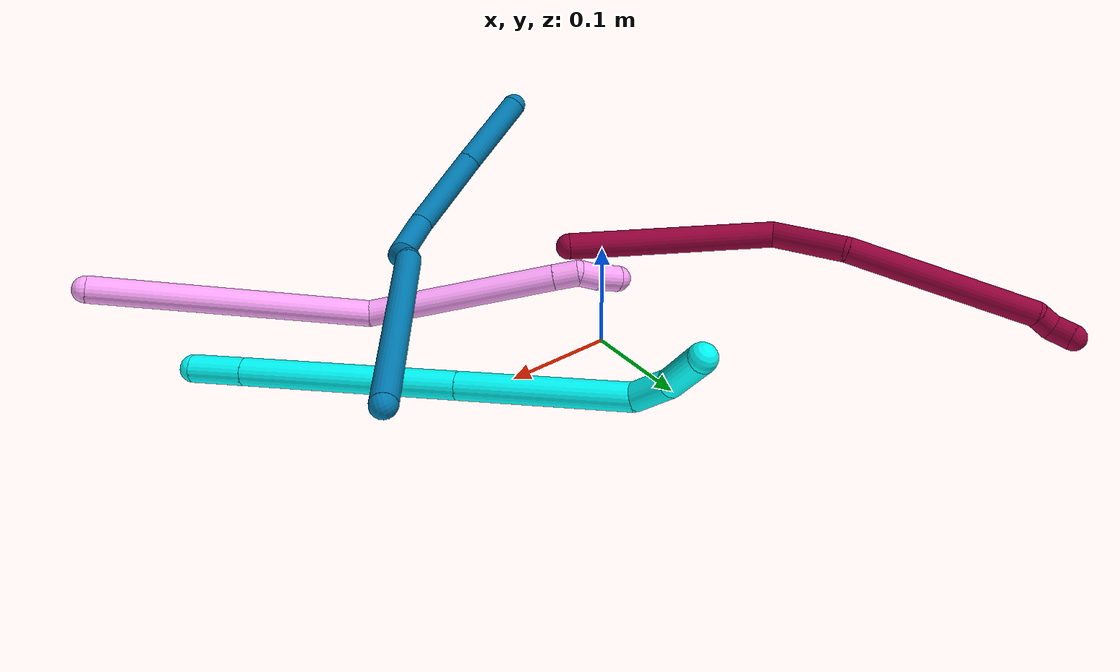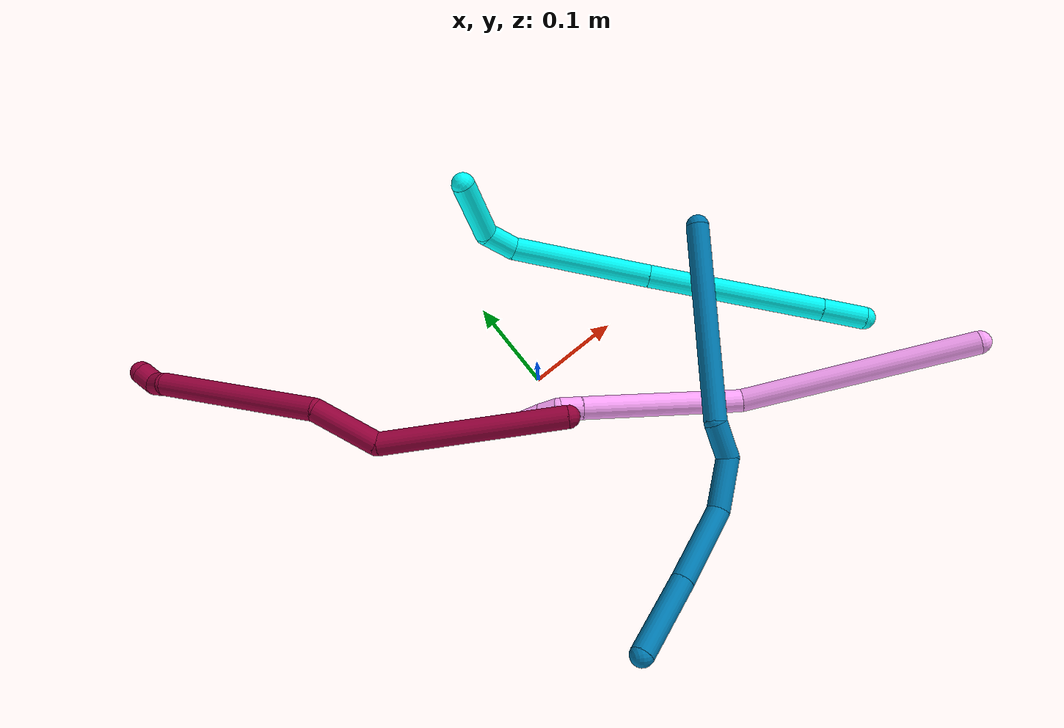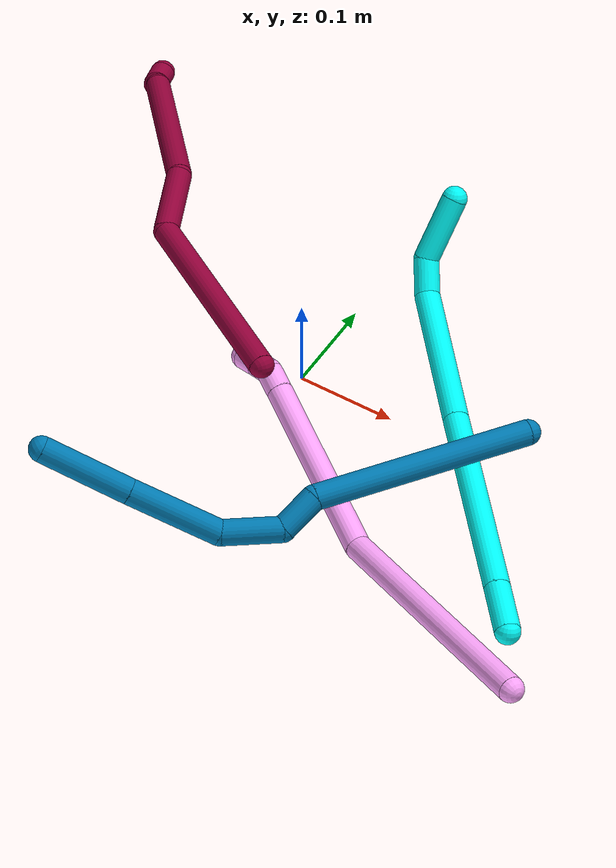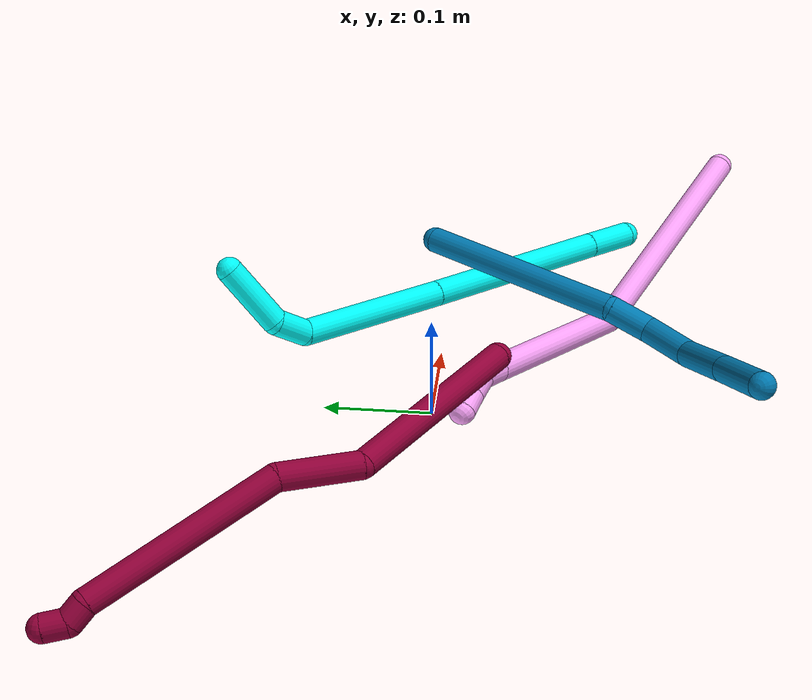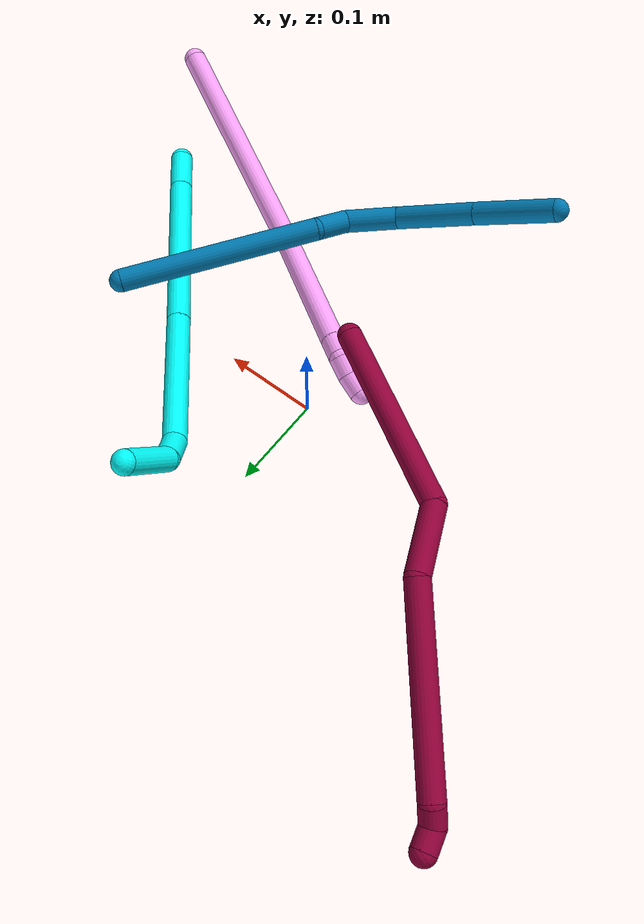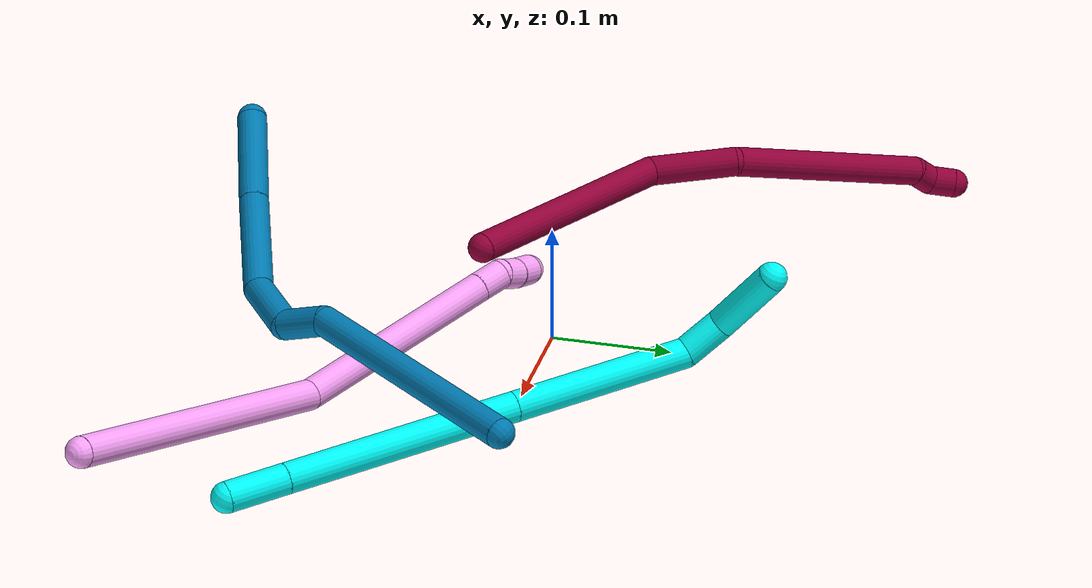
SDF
<sdf version="1.7">
 <world name="default">
  <model name="3">
   <static>0</static>
   <link name="3">
    <collision name="collision-cylinder-e_1_1_4">
     <pose>-0.014119 0.017266 0.010557 -1.02203 -0.609152 0.348933</pose>
     <geometry><cylinder><radius>0.0125</radius><length>0.049352</length></cylinder></geometry>
     <surface>
      <friction><ode><mu>1.16</mu><mu2>1.16</mu2><slip1>0</slip1><slip2>0</slip2></ode></friction>
      <contact><ode><kp>1e+06</kp><kd>1</kd><max_vel>0</max_vel><min_depth>0.001</min_depth></ode></contact>
     </surface>
    </collision>
    <visual name="visual-cylinder-e_1_1_4">
     <pose>-0.014119 0.017266 0.010557 -1.02203 -0.609152 0.348933</pose>
     <geometry><cylinder><radius>0.0125</radius><length>0.049352</length></cylinder></geometry>
     <material><ambient>0.003922 1 0.996078 1</ambient></material>
    </visual>
    <collision name="collision-cylinder-e_2_4_5">
     <pose>-0.084763 0.103156 0.062581 -1.02724 -0.614066 0.353977</pose>
     <geometry><cylinder><radius>0.0125</radius><length>0.196202</length></cylinder></geometry>
     <surface>
      <friction><ode><mu>1.16</mu><mu2>1.16</mu2><slip1>0</slip1><slip2>0</slip2></ode></friction>
      <contact><ode><kp>1e+06</kp><kd>1</kd><max_vel>0</max_vel><min_depth>0.001</min_depth></ode></contact>
     </surface>
    </collision>
    <visual name="visual-cylinder-e_2_4_5">
     <pose>-0.084763 0.103156 0.062581 -1.02724 -0.614066 0.353977</pose>
     <geometry><cylinder><radius>0.0125</radius><length>0.196202</length></cylinder></geometry>
     <material><ambient>0.003922 1 0.996078 1</ambient></material>
    </visual>
    <collision name="collision-cylinder-e_3_5_6">
     <pose>-0.184605 0.225233 0.1369 -1.01971 -0.60424 0.345076</pose>
     <geometry><cylinder><radius>0.0125</radius><length>0.152484</length></cylinder></geometry>
     <surface>
      <friction><ode><mu>1.16</mu><mu2>1.16</mu2><slip1>0</slip1><slip2>0</slip2></ode></friction>
      <contact><ode><kp>1e+06</kp><kd>1</kd><max_vel>0</max_vel><min_depth>0.001</min_depth></ode></contact>
     </surface>
    </collision>
    <visual name="visual-cylinder-e_3_5_6">
     <pose>-0.184605 0.225233 0.1369 -1.01971 -0.60424 0.345076</pose>
     <geometry><cylinder><radius>0.0125</radius><length>0.152484</length></cylinder></geometry>
     <material><ambient>0.003922 1 0.996078 1</ambient></material>
    </visual>
    <collision name="collision-cylinder-e_4_6_7">
     <pose>-0.234196 0.286289 0.185246 -0.456218 -0.34875 0.081747</pose>
     <geometry><cylinder><radius>0.0125</radius><length>0.036728</length></cylinder></geometry>
     <surface>
      <friction><ode><mu>1.16</mu><mu2>1.16</mu2><slip1>0</slip1><slip2>0</slip2></ode></friction>
      <contact><ode><kp>1e+06</kp><kd>1</kd><max_vel>0</max_vel><min_depth>0.001</min_depth></ode></contact>
     </surface>
    </collision>
    <visual name="visual-cylinder-e_4_6_7">
     <pose>-0.234196 0.286289 0.185246 -0.456218 -0.34875 0.081747</pose>
     <geometry><cylinder><radius>0.0125</radius><length>0.036728</length></cylinder></geometry>
     <material><ambient>0.003922 1 0.996078 1</ambient></material>
    </visual>
    <collision name="collision-cylinder-e_5_7_2">
     <pose>-0.233897 0.302332 0.231553 -0.267321 0.202948 -0.027381</pose>
     <geometry><cylinder><radius>0.0125</radius><length>0.065234</length></cylinder></geometry>
     <surface>
      <friction><ode><mu>1.16</mu><mu2>1.16</mu2><slip1>0</slip1><slip2>0</slip2></ode></friction>
      <contact><ode><kp>1e+06</kp><kd>1</kd><max_vel>0</max_vel><min_depth>0.001</min_depth></ode></contact>
     </surface>
    </collision>
    <visual name="visual-cylinder-e_5_7_2">
     <pose>-0.233897 0.302332 0.231553 -0.267321 0.202948 -0.027381</pose>
     <geometry><cylinder><radius>0.0125</radius><length>0.065234</length></cylinder></geometry>
     <material><ambient>0.003922 1 0.996078 1</ambient></material>
    </visual>
    <collision name="collision-sphere-2">
     <pose>-0.227323 0.310771 0.262365 0 -0 0</pose>
     <geometry><sphere><radius>0.0125</radius></sphere></geometry>
     <surface>
      <friction><ode><mu>1.16</mu><mu2>1.16</mu2><slip1>0</slip1><slip2>0</slip2></ode></friction>
      <contact><ode><kp>1e+06</kp><kd>1</kd><max_vel>0</max_vel><min_depth>0.001</min_depth></ode></contact>
     </surface>
    </collision>
    <visual name="visual-sphere-2">
     <pose>-0.227323 0.310771 0.262365 0 -0 0</pose>
     <geometry><sphere><radius>0.0125</radius></sphere></geometry>
     <material><ambient>0.003922 1 0.996078 1</ambient></material>
    </visual>
    <collision name="collision-sphere-7">
     <pose>-0.240471 0.293893 0.20074 0 -0 0</pose>
     <geometry><sphere><radius>0.0125</radius></sphere></geometry>
     <surface>
      <friction><ode><mu>1.16</mu><mu2>1.16</mu2><slip1>0</slip1><slip2>0</slip2></ode></friction>
      <contact><ode><kp>1e+06</kp><kd>1</kd><max_vel>0</max_vel><min_depth>0.001</min_depth></ode></contact>
     </surface>
    </collision>
    <visual name="visual-sphere-7">
     <pose>-0.240471 0.293893 0.20074 0 -0 0</pose>
     <geometry><sphere><radius>0.0125</radius></sphere></geometry>
     <material><ambient>0.003922 1 0.996078 1</ambient></material>
    </visual>
    <collision name="collision-sphere-6">
     <pose>-0.22792 0.278686 0.169753 0 -0 0</pose>
     <geometry><sphere><radius>0.0125</radius></sphere></geometry>
     <surface>
      <friction><ode><mu>1.16</mu><mu2>1.16</mu2><slip1>0</slip1><slip2>0</slip2></ode></friction>
      <contact><ode><kp>1e+06</kp><kd>1</kd><max_vel>0</max_vel><min_depth>0.001</min_depth></ode></contact>
     </surface>
    </collision>
    <visual name="visual-sphere-6">
     <pose>-0.22792 0.278686 0.169753 0 -0 0</pose>
     <geometry><sphere><radius>0.0125</radius></sphere></geometry>
     <material><ambient>0.003922 1 0.996078 1</ambient></material>
    </visual>
    <collision name="collision-sphere-5">
     <pose>-0.141289 0.171779 0.104048 0 -0 0</pose>
     <geometry><sphere><radius>0.0125</radius></sphere></geometry>
     <surface>
      <friction><ode><mu>1.16</mu><mu2>1.16</mu2><slip1>0</slip1><slip2>0</slip2></ode></friction>
      <contact><ode><kp>1e+06</kp><kd>1</kd><max_vel>0</max_vel><min_depth>0.001</min_depth></ode></contact>
     </surface>
    </collision>
    <visual name="visual-sphere-5">
     <pose>-0.141289 0.171779 0.104048 0 -0 0</pose>
     <geometry><sphere><radius>0.0125</radius></sphere></geometry>
     <material><ambient>0.003922 1 0.996078 1</ambient></material>
    </visual>
    <collision name="collision-sphere-1">
     <geometry><sphere><radius>0.0125</radius></sphere></geometry>
     <surface>
      <friction><ode><mu>1.16</mu><mu2>1.16</mu2><slip1>0</slip1><slip2>0</slip2></ode></friction>
      <contact><ode><kp>1e+06</kp><kd>1</kd><max_vel>0</max_vel><min_depth>0.001</min_depth></ode></contact>
     </surface>
    </collision>
    <visual name="visual-sphere-1">
     <geometry><sphere><radius>0.0125</radius></sphere></geometry>
     <material><ambient>0.003922 1 0.996078 1</ambient></material>
    </visual>
    <collision name="collision-sphere-4">
     <pose>-0.028238 0.034532 0.021113 0 -0 0</pose>
     <geometry><sphere><radius>0.0125</radius></sphere></geometry>
     <surface>
      <friction><ode><mu>1.16</mu><mu2>1.16</mu2><slip1>0</slip1><slip2>0</slip2></ode></friction>
      <contact><ode><kp>1e+06</kp><kd>1</kd><max_vel>0</max_vel><min_depth>0.001</min_depth></ode></contact>
     </surface>
    </collision>
    <visual name="visual-sphere-4">
     <pose>-0.028238 0.034532 0.021113 0 -0 0</pose>
     <geometry><sphere><radius>0.0125</radius></sphere></geometry>
     <material><ambient>0.003922 1 0.996078 1</ambient></material>
    </visual>
    <inertial>
     <pose>-0.138673 0.171346 0.111167 0 -0 0</pose>
     <mass>0.5</mass>
     <inertia>
      <ixx>0.001011</ixx>
      <ixy>0</ixy>
      <ixz>0</ixz>
      <iyy>0.000945</iyy>
      <iyz>0</iyz>
      <izz>-0.000112</izz>
     </inertia>
    </inertial>
   </link>
   <pose>0.326694 -0.172683 0.011496 -0.421187 -0.060674 0.100629</pose>
  </model>
  <model name="4">
   <static>0</static>
   <link name="4">
    <collision name="collision-cylinder-e_1_1_4">
     <pose>0.007169 0.001727 -0.126411 -3.12793 0.056647 -2.66851</pose>
     <geometry><cylinder><radius>0.0125</radius><length>0.253251</length></cylinder></geometry>
     <surface>
      <friction><ode><mu>1.16</mu><mu2>1.16</mu2><slip1>0</slip1><slip2>0</slip2></ode></friction>
      <contact><ode><kp>1e+06</kp><kd>1</kd><max_vel>0</max_vel><min_depth>0.001</min_depth></ode></contact>
     </surface>
    </collision>
    <visual name="visual-cylinder-e_1_1_4">
     <pose>0.007169 0.001727 -0.126411 -3.12793 0.056647 -2.66851</pose>
     <geometry><cylinder><radius>0.0125</radius><length>0.253251</length></cylinder></geometry>
     <material><ambient>1 0.65098 0.996078 1</ambient></material>
    </visual>
    <collision name="collision-cylinder-e_2_4_5">
     <pose>-0.003632 0.035721 -0.335241 -2.76843 -0.2003 0.978316</pose>
     <geometry><cylinder><radius>0.0125</radius><length>0.180633</length></cylinder></geometry>
     <surface>
      <friction><ode><mu>1.16</mu><mu2>1.16</mu2><slip1>0</slip1><slip2>0</slip2></ode></friction>
      <contact><ode><kp>1e+06</kp><kd>1</kd><max_vel>0</max_vel><min_depth>0.001</min_depth></ode></contact>
     </surface>
    </collision>
    <visual name="visual-cylinder-e_2_4_5">
     <pose>-0.003632 0.035721 -0.335241 -2.76843 -0.2003 0.978316</pose>
     <geometry><cylinder><radius>0.0125</radius><length>0.180633</length></cylinder></geometry>
     <material><ambient>1 0.65098 0.996078 1</ambient></material>
    </visual>
    <collision name="collision-cylinder-e_3_5_6">
     <pose>-0.02389 0.072186 -0.428824 -2.78195 -0.189585 0.963779</pose>
     <geometry><cylinder><radius>0.0125</radius><length>0.024289</length></cylinder></geometry>
     <surface>
      <friction><ode><mu>1.16</mu><mu2>1.16</mu2><slip1>0</slip1><slip2>0</slip2></ode></friction>
      <contact><ode><kp>1e+06</kp><kd>1</kd><max_vel>0</max_vel><min_depth>0.001</min_depth></ode></contact>
     </surface>
    </collision>
    <visual name="visual-cylinder-e_3_5_6">
     <pose>-0.02389 0.072186 -0.428824 -2.78195 -0.189585 0.963779</pose>
     <geometry><cylinder><radius>0.0125</radius><length>0.024289</length></cylinder></geometry>
     <material><ambient>1 0.65098 0.996078 1</ambient></material>
    </visual>
    <collision name="collision-cylinder-e_4_6_7">
     <pose>-0.024593 0.075357 -0.45006 3.04007 0.155354 1.98499</pose>
     <geometry><cylinder><radius>0.0125</radius><length>0.020496</length></cylinder></geometry>
     <surface>
      <friction><ode><mu>1.16</mu><mu2>1.16</mu2><slip1>0</slip1><slip2>0</slip2></ode></friction>
      <contact><ode><kp>1e+06</kp><kd>1</kd><max_vel>0</max_vel><min_depth>0.001</min_depth></ode></contact>
     </surface>
    </collision>
    <visual name="visual-cylinder-e_4_6_7">
     <pose>-0.024593 0.075357 -0.45006 3.04007 0.155354 1.98499</pose>
     <geometry><cylinder><radius>0.0125</radius><length>0.020496</length></cylinder></geometry>
     <material><ambient>1 0.65098 0.996078 1</ambient></material>
    </visual>
    <collision name="collision-cylinder-e_5_7_2">
     <pose>-0.022886 0.072983 -0.470712 3.01487 0.011342 0.178294</pose>
     <geometry><cylinder><radius>0.0125</radius><length>0.021331</length></cylinder></geometry>
     <surface>
      <friction><ode><mu>1.16</mu><mu2>1.16</mu2><slip1>0</slip1><slip2>0</slip2></ode></friction>
      <contact><ode><kp>1e+06</kp><kd>1</kd><max_vel>0</max_vel><min_depth>0.001</min_depth></ode></contact>
     </surface>
    </collision>
    <visual name="visual-cylinder-e_5_7_2">
     <pose>-0.022886 0.072983 -0.470712 3.01487 0.011342 0.178294</pose>
     <geometry><cylinder><radius>0.0125</radius><length>0.021331</length></cylinder></geometry>
     <material><ambient>1 0.65098 0.996078 1</ambient></material>
    </visual>
    <collision name="collision-sphere-2">
     <pose>-0.022765 0.071635 -0.481291 0 -0 0</pose>
     <geometry><sphere><radius>0.0125</radius></sphere></geometry>
     <surface>
      <friction><ode><mu>1.16</mu><mu2>1.16</mu2><slip1>0</slip1><slip2>0</slip2></ode></friction>
      <contact><ode><kp>1e+06</kp><kd>1</kd><max_vel>0</max_vel><min_depth>0.001</min_depth></ode></contact>
     </surface>
    </collision>
    <visual name="visual-sphere-2">
     <pose>-0.022765 0.071635 -0.481291 0 -0 0</pose>
     <geometry><sphere><radius>0.0125</radius></sphere></geometry>
     <material><ambient>1 0.65098 0.996078 1</ambient></material>
    </visual>
    <collision name="collision-sphere-7">
     <pose>-0.023007 0.074331 -0.460132 0 -0 0</pose>
     <geometry><sphere><radius>0.0125</radius></sphere></geometry>
     <surface>
      <friction><ode><mu>1.16</mu><mu2>1.16</mu2><slip1>0</slip1><slip2>0</slip2></ode></friction>
      <contact><ode><kp>1e+06</kp><kd>1</kd><max_vel>0</max_vel><min_depth>0.001</min_depth></ode></contact>
     </surface>
    </collision>
    <visual name="visual-sphere-7">
     <pose>-0.023007 0.074331 -0.460132 0 -0 0</pose>
     <geometry><sphere><radius>0.0125</radius></sphere></geometry>
     <material><ambient>1 0.65098 0.996078 1</ambient></material>
    </visual>
    <collision name="collision-sphere-6">
     <pose>-0.026179 0.076383 -0.439988 0 -0 0</pose>
     <geometry><sphere><radius>0.0125</radius></sphere></geometry>
     <surface>
      <friction><ode><mu>1.16</mu><mu2>1.16</mu2><slip1>0</slip1><slip2>0</slip2></ode></friction>
      <contact><ode><kp>1e+06</kp><kd>1</kd><max_vel>0</max_vel><min_depth>0.001</min_depth></ode></contact>
     </surface>
    </collision>
    <visual name="visual-sphere-6">
     <pose>-0.026179 0.076383 -0.439988 0 -0 0</pose>
     <geometry><sphere><radius>0.0125</radius></sphere></geometry>
     <material><ambient>1 0.65098 0.996078 1</ambient></material>
    </visual>
    <collision name="collision-sphere-5">
     <pose>-0.021601 0.067988 -0.417661 0 -0 0</pose>
     <geometry><sphere><radius>0.0125</radius></sphere></geometry>
     <surface>
      <friction><ode><mu>1.16</mu><mu2>1.16</mu2><slip1>0</slip1><slip2>0</slip2></ode></friction>
      <contact><ode><kp>1e+06</kp><kd>1</kd><max_vel>0</max_vel><min_depth>0.001</min_depth></ode></contact>
     </surface>
    </collision>
    <visual name="visual-sphere-5">
     <pose>-0.021601 0.067988 -0.417661 0 -0 0</pose>
     <geometry><sphere><radius>0.0125</radius></sphere></geometry>
     <material><ambient>1 0.65098 0.996078 1</ambient></material>
    </visual>
    <collision name="collision-sphere-1">
     <geometry><sphere><radius>0.0125</radius></sphere></geometry>
     <surface>
      <friction><ode><mu>1.16</mu><mu2>1.16</mu2><slip1>0</slip1><slip2>0</slip2></ode></friction>
      <contact><ode><kp>1e+06</kp><kd>1</kd><max_vel>0</max_vel><min_depth>0.001</min_depth></ode></contact>
     </surface>
    </collision>
    <visual name="visual-sphere-1">
     <geometry><sphere><radius>0.0125</radius></sphere></geometry>
     <material><ambient>1 0.65098 0.996078 1</ambient></material>
    </visual>
    <collision name="collision-sphere-4">
     <pose>0.014338 0.003453 -0.252821 0 -0 0</pose>
     <geometry><sphere><radius>0.0125</radius></sphere></geometry>
     <surface>
      <friction><ode><mu>1.16</mu><mu2>1.16</mu2><slip1>0</slip1><slip2>0</slip2></ode></friction>
      <contact><ode><kp>1e+06</kp><kd>1</kd><max_vel>0</max_vel><min_depth>0.001</min_depth></ode></contact>
     </surface>
    </collision>
    <visual name="visual-sphere-4">
     <pose>0.014338 0.003453 -0.252821 0 -0 0</pose>
     <geometry><sphere><radius>0.0125</radius></sphere></geometry>
     <material><ambient>1 0.65098 0.996078 1</ambient></material>
    </visual>
    <inertial>
     <pose>-0.000826 0.023489 -0.2445 0 -0 0</pose>
     <mass>0.5</mass>
     <inertia>
      <ixx>-0.00115</ixx>
      <ixy>0</ixy>
      <ixz>0</ixz>
      <iyy>0.000777</iyy>
      <iyz>0</iyz>
      <izz>-0.000212</izz>
     </inertia>
    </inertial>
   </link>
   <pose>0.38104 -0.267041 0.068438 1.247 0.942726 0.896169</pose>
  </model>
  <model name="8">
   <static>0</static>
   <link name="8">
    <collision name="collision-cylinder-e_1_1_4">
     <pose>-0.044067 0.087049 0.020827 -1.33595 -0.457498 0.36333</pose>
     <geometry><cylinder><radius>0.0125</radius><length>0.199532</length></cylinder></geometry>
     <surface>
      <friction><ode><mu>1.16</mu><mu2>1.16</mu2><slip1>0</slip1><slip2>0</slip2></ode></friction>
      <contact><ode><kp>1e+06</kp><kd>1</kd><max_vel>0</max_vel><min_depth>0.001</min_depth></ode></contact>
     </surface>
    </collision>
    <visual name="visual-cylinder-e_1_1_4">
     <pose>-0.044067 0.087049 0.020827 -1.33595 -0.457498 0.36333</pose>
     <geometry><cylinder><radius>0.0125</radius><length>0.199532</length></cylinder></geometry>
     <material><ambient>0.584314 0 0.227451 1</ambient></material>
    </visual>
    <collision name="collision-cylinder-e_2_4_5">
     <pose>-0.105393 0.192829 0.068469 -0.609753 -0.485538 0.155552</pose>
     <geometry><cylinder><radius>0.0125</radius><length>0.073966</length></cylinder></geometry>
     <surface>
      <friction><ode><mu>1.16</mu><mu2>1.16</mu2><slip1>0</slip1><slip2>0</slip2></ode></friction>
      <contact><ode><kp>1e+06</kp><kd>1</kd><max_vel>0</max_vel><min_depth>0.001</min_depth></ode></contact>
     </surface>
    </collision>
    <visual name="visual-cylinder-e_2_4_5">
     <pose>-0.105393 0.192829 0.068469 -0.609753 -0.485538 0.155552</pose>
     <geometry><cylinder><radius>0.0125</radius><length>0.073966</length></cylinder></geometry>
     <material><ambient>0.584314 0 0.227451 1</ambient></material>
    </visual>
    <collision name="collision-cylinder-e_3_5_6">
     <pose>-0.142228 0.285958 0.146533 -0.967581 -0.213379 0.112426</pose>
     <geometry><cylinder><radius>0.0125</radius><length>0.184877</length></cylinder></geometry>
     <surface>
      <friction><ode><mu>1.16</mu><mu2>1.16</mu2><slip1>0</slip1><slip2>0</slip2></ode></friction>
      <contact><ode><kp>1e+06</kp><kd>1</kd><max_vel>0</max_vel><min_depth>0.001</min_depth></ode></contact>
     </surface>
    </collision>
    <visual name="visual-cylinder-e_3_5_6">
     <pose>-0.142228 0.285958 0.146533 -0.967581 -0.213379 0.112426</pose>
     <geometry><cylinder><radius>0.0125</radius><length>0.184877</length></cylinder></geometry>
     <material><ambient>0.584314 0 0.227451 1</ambient></material>
    </visual>
    <collision name="collision-cylinder-e_4_6_7">
     <pose>-0.15985 0.368651 0.203045 -1.00559 0.196269 -0.108177</pose>
     <geometry><cylinder><radius>0.0125</radius><length>0.020029</length></cylinder></geometry>
     <surface>
      <friction><ode><mu>1.16</mu><mu2>1.16</mu2><slip1>0</slip1><slip2>0</slip2></ode></friction>
      <contact><ode><kp>1e+06</kp><kd>1</kd><max_vel>0</max_vel><min_depth>0.001</min_depth></ode></contact>
     </surface>
    </collision>
    <visual name="visual-cylinder-e_4_6_7">
     <pose>-0.15985 0.368651 0.203045 -1.00559 0.196269 -0.108177</pose>
     <geometry><cylinder><radius>0.0125</radius><length>0.020029</length></cylinder></geometry>
     <material><ambient>0.584314 0 0.227451 1</ambient></material>
    </visual>
    <collision name="collision-cylinder-e_5_7_2">
     <pose>-0.160727 0.381942 0.21745 -0.500067 -0.265153 0.068087</pose>
     <geometry><cylinder><radius>0.0125</radius><length>0.021596</length></cylinder></geometry>
     <surface>
      <friction><ode><mu>1.16</mu><mu2>1.16</mu2><slip1>0</slip1><slip2>0</slip2></ode></friction>
      <contact><ode><kp>1e+06</kp><kd>1</kd><max_vel>0</max_vel><min_depth>0.001</min_depth></ode></contact>
     </surface>
    </collision>
    <visual name="visual-cylinder-e_5_7_2">
     <pose>-0.160727 0.381942 0.21745 -0.500067 -0.265153 0.068087</pose>
     <geometry><cylinder><radius>0.0125</radius><length>0.021596</length></cylinder></geometry>
     <material><ambient>0.584314 0 0.227451 1</ambient></material>
    </visual>
    <collision name="collision-sphere-2">
     <pose>-0.163557 0.386939 0.226595 0 -0 0</pose>
     <geometry><sphere><radius>0.0125</radius></sphere></geometry>
     <surface>
      <friction><ode><mu>1.16</mu><mu2>1.16</mu2><slip1>0</slip1><slip2>0</slip2></ode></friction>
      <contact><ode><kp>1e+06</kp><kd>1</kd><max_vel>0</max_vel><min_depth>0.001</min_depth></ode></contact>
     </surface>
    </collision>
    <visual name="visual-sphere-2">
     <pose>-0.163557 0.386939 0.226595 0 -0 0</pose>
     <geometry><sphere><radius>0.0125</radius></sphere></geometry>
     <material><ambient>0.584314 0 0.227451 1</ambient></material>
    </visual>
    <collision name="collision-sphere-7">
     <pose>-0.157897 0.376946 0.208305 0 -0 0</pose>
     <geometry><sphere><radius>0.0125</radius></sphere></geometry>
     <surface>
      <friction><ode><mu>1.16</mu><mu2>1.16</mu2><slip1>0</slip1><slip2>0</slip2></ode></friction>
      <contact><ode><kp>1e+06</kp><kd>1</kd><max_vel>0</max_vel><min_depth>0.001</min_depth></ode></contact>
     </surface>
    </collision>
    <visual name="visual-sphere-7">
     <pose>-0.157897 0.376946 0.208305 0 -0 0</pose>
     <geometry><sphere><radius>0.0125</radius></sphere></geometry>
     <material><ambient>0.584314 0 0.227451 1</ambient></material>
    </visual>
    <collision name="collision-sphere-6">
     <pose>-0.161803 0.360356 0.197784 0 -0 0</pose>
     <geometry><sphere><radius>0.0125</radius></sphere></geometry>
     <surface>
      <friction><ode><mu>1.16</mu><mu2>1.16</mu2><slip1>0</slip1><slip2>0</slip2></ode></friction>
      <contact><ode><kp>1e+06</kp><kd>1</kd><max_vel>0</max_vel><min_depth>0.001</min_depth></ode></contact>
     </surface>
    </collision>
    <visual name="visual-sphere-6">
     <pose>-0.161803 0.360356 0.197784 0 -0 0</pose>
     <geometry><sphere><radius>0.0125</radius></sphere></geometry>
     <material><ambient>0.584314 0 0.227451 1</ambient></material>
    </visual>
    <collision name="collision-sphere-5">
     <pose>-0.122653 0.21156 0.095283 0 -0 0</pose>
     <geometry><sphere><radius>0.0125</radius></sphere></geometry>
     <surface>
      <friction><ode><mu>1.16</mu><mu2>1.16</mu2><slip1>0</slip1><slip2>0</slip2></ode></friction>
      <contact><ode><kp>1e+06</kp><kd>1</kd><max_vel>0</max_vel><min_depth>0.001</min_depth></ode></contact>
     </surface>
    </collision>
    <visual name="visual-sphere-5">
     <pose>-0.122653 0.21156 0.095283 0 -0 0</pose>
     <geometry><sphere><radius>0.0125</radius></sphere></geometry>
     <material><ambient>0.584314 0 0.227451 1</ambient></material>
    </visual>
    <collision name="collision-sphere-1">
     <geometry><sphere><radius>0.0125</radius></sphere></geometry>
     <surface>
      <friction><ode><mu>1.16</mu><mu2>1.16</mu2><slip1>0</slip1><slip2>0</slip2></ode></friction>
      <contact><ode><kp>1e+06</kp><kd>1</kd><max_vel>0</max_vel><min_depth>0.001</min_depth></ode></contact>
     </surface>
    </collision>
    <visual name="visual-sphere-1">
     <geometry><sphere><radius>0.0125</radius></sphere></geometry>
     <material><ambient>0.584314 0 0.227451 1</ambient></material>
    </visual>
    <collision name="collision-sphere-4">
     <pose>-0.088134 0.174098 0.041655 0 -0 0</pose>
     <geometry><sphere><radius>0.0125</radius></sphere></geometry>
     <surface>
      <friction><ode><mu>1.16</mu><mu2>1.16</mu2><slip1>0</slip1><slip2>0</slip2></ode></friction>
      <contact><ode><kp>1e+06</kp><kd>1</kd><max_vel>0</max_vel><min_depth>0.001</min_depth></ode></contact>
     </surface>
    </collision>
    <visual name="visual-sphere-4">
     <pose>-0.088134 0.174098 0.041655 0 -0 0</pose>
     <geometry><sphere><radius>0.0125</radius></sphere></geometry>
     <material><ambient>0.584314 0 0.227451 1</ambient></material>
    </visual>
    <inertial>
     <pose>-0.099111 0.200263 0.090147 0 -0 0</pose>
     <mass>0.5</mass>
     <inertia>
      <ixx>0.001379</ixx>
      <ixy>0</ixy>
      <ixz>0</ixz>
      <iyy>0.0009</iyy>
      <iyz>0</iyz>
      <izz>-0.000591</izz>
     </inertia>
    </inertial>
   </link>
   <pose>-0.007183 -0.060524 0.072479 -2.08344 1.09497 -0.776168</pose>
  </model>
  <model name="9">
   <static>0</static>
   <link name="9">
    <collision name="collision-cylinder-e_1_1_4">
     <pose>0.02955 0.005795 0.032906 -0.174307 0.724124 -0.066164</pose>
     <geometry><cylinder><radius>0.0125</radius><length>0.08921</length></cylinder></geometry>
     <surface>
      <friction><ode><mu>1.16</mu><mu2>1.16</mu2><slip1>0</slip1><slip2>0</slip2></ode></friction>
      <contact><ode><kp>1e+06</kp><kd>1</kd><max_vel>0</max_vel><min_depth>0.001</min_depth></ode></contact>
     </surface>
    </collision>
    <visual name="visual-cylinder-e_1_1_4">
     <pose>0.02955 0.005795 0.032906 -0.174307 0.724124 -0.066164</pose>
     <geometry><cylinder><radius>0.0125</radius><length>0.08921</length></cylinder></geometry>
     <material><ambient>0 0.490196 0.709804 1</ambient></material>
    </visual>
    <collision name="collision-cylinder-e_2_4_5">
     <pose>0.090492 0.017812 0.09918 -0.184375 0.74639 -0.072365</pose>
     <geometry><cylinder><radius>0.0125</radius><length>0.092467</length></cylinder></geometry>
     <surface>
      <friction><ode><mu>1.16</mu><mu2>1.16</mu2><slip1>0</slip1><slip2>0</slip2></ode></friction>
      <contact><ode><kp>1e+06</kp><kd>1</kd><max_vel>0</max_vel><min_depth>0.001</min_depth></ode></contact>
     </surface>
    </collision>
    <visual name="visual-cylinder-e_2_4_5">
     <pose>0.090492 0.017812 0.09918 -0.184375 0.74639 -0.072365</pose>
     <geometry><cylinder><radius>0.0125</radius><length>0.092467</length></cylinder></geometry>
     <material><ambient>0 0.490196 0.709804 1</ambient></material>
    </visual>
    <collision name="collision-cylinder-e_3_5_6">
     <pose>0.145224 0.037396 0.144051 -0.859955 0.923832 -0.448916</pose>
     <geometry><cylinder><radius>0.0125</radius><length>0.058502</length></cylinder></geometry>
     <surface>
      <friction><ode><mu>1.16</mu><mu2>1.16</mu2><slip1>0</slip1><slip2>0</slip2></ode></friction>
      <contact><ode><kp>1e+06</kp><kd>1</kd><max_vel>0</max_vel><min_depth>0.001</min_depth></ode></contact>
     </surface>
    </collision>
    <visual name="visual-cylinder-e_3_5_6">
     <pose>0.145224 0.037396 0.144051 -0.859955 0.923832 -0.448916</pose>
     <geometry><cylinder><radius>0.0125</radius><length>0.058502</length></cylinder></geometry>
     <material><ambient>0 0.490196 0.709804 1</ambient></material>
    </visual>
    <collision name="collision-cylinder-e_4_6_7">
     <pose>0.183293 0.064001 0.149541 -1.99706 0.791691 -1.15099</pose>
     <geometry><cylinder><radius>0.0125</radius><length>0.041401</length></cylinder></geometry>
     <surface>
      <friction><ode><mu>1.16</mu><mu2>1.16</mu2><slip1>0</slip1><slip2>0</slip2></ode></friction>
      <contact><ode><kp>1e+06</kp><kd>1</kd><max_vel>0</max_vel><min_depth>0.001</min_depth></ode></contact>
     </surface>
    </collision>
    <visual name="visual-cylinder-e_4_6_7">
     <pose>0.183293 0.064001 0.149541 -1.99706 0.791691 -1.15099</pose>
     <geometry><cylinder><radius>0.0125</radius><length>0.041401</length></cylinder></geometry>
     <material><ambient>0 0.490196 0.709804 1</ambient></material>
    </visual>
    <collision name="collision-cylinder-e_5_7_2">
     <pose>0.294879 0.125593 0.15795 -1.28088 1.09055 -0.849155</pose>
     <geometry><cylinder><radius>0.0125</radius><length>0.21842</length></cylinder></geometry>
     <surface>
      <friction><ode><mu>1.16</mu><mu2>1.16</mu2><slip1>0</slip1><slip2>0</slip2></ode></friction>
      <contact><ode><kp>1e+06</kp><kd>1</kd><max_vel>0</max_vel><min_depth>0.001</min_depth></ode></contact>
     </surface>
    </collision>
    <visual name="visual-cylinder-e_5_7_2">
     <pose>0.294879 0.125593 0.15795 -1.28088 1.09055 -0.849155</pose>
     <geometry><cylinder><radius>0.0125</radius><length>0.21842</length></cylinder></geometry>
     <material><ambient>0 0.490196 0.709804 1</ambient></material>
    </visual>
    <collision name="collision-sphere-2">
     <pose>0.391735 0.173942 0.172374 0 -0 0</pose>
     <geometry><sphere><radius>0.0125</radius></sphere></geometry>
     <surface>
      <friction><ode><mu>1.16</mu><mu2>1.16</mu2><slip1>0</slip1><slip2>0</slip2></ode></friction>
      <contact><ode><kp>1e+06</kp><kd>1</kd><max_vel>0</max_vel><min_depth>0.001</min_depth></ode></contact>
     </surface>
    </collision>
    <visual name="visual-sphere-2">
     <pose>0.391735 0.173942 0.172374 0 -0 0</pose>
     <geometry><sphere><radius>0.0125</radius></sphere></geometry>
     <material><ambient>0 0.490196 0.709804 1</ambient></material>
    </visual>
    <collision name="collision-sphere-7">
     <pose>0.198023 0.077244 0.143527 0 -0 0</pose>
     <geometry><sphere><radius>0.0125</radius></sphere></geometry>
     <surface>
      <friction><ode><mu>1.16</mu><mu2>1.16</mu2><slip1>0</slip1><slip2>0</slip2></ode></friction>
      <contact><ode><kp>1e+06</kp><kd>1</kd><max_vel>0</max_vel><min_depth>0.001</min_depth></ode></contact>
     </surface>
    </collision>
    <visual name="visual-sphere-7">
     <pose>0.198023 0.077244 0.143527 0 -0 0</pose>
     <geometry><sphere><radius>0.0125</radius></sphere></geometry>
     <material><ambient>0 0.490196 0.709804 1</ambient></material>
    </visual>
    <collision name="collision-sphere-6">
     <pose>0.168564 0.050757 0.155555 0 -0 0</pose>
     <geometry><sphere><radius>0.0125</radius></sphere></geometry>
     <surface>
      <friction><ode><mu>1.16</mu><mu2>1.16</mu2><slip1>0</slip1><slip2>0</slip2></ode></friction>
      <contact><ode><kp>1e+06</kp><kd>1</kd><max_vel>0</max_vel><min_depth>0.001</min_depth></ode></contact>
     </surface>
    </collision>
    <visual name="visual-sphere-6">
     <pose>0.168564 0.050757 0.155555 0 -0 0</pose>
     <geometry><sphere><radius>0.0125</radius></sphere></geometry>
     <material><ambient>0 0.490196 0.709804 1</ambient></material>
    </visual>
    <collision name="collision-sphere-5">
     <pose>0.121884 0.024035 0.132546 0 -0 0</pose>
     <geometry><sphere><radius>0.0125</radius></sphere></geometry>
     <surface>
      <friction><ode><mu>1.16</mu><mu2>1.16</mu2><slip1>0</slip1><slip2>0</slip2></ode></friction>
      <contact><ode><kp>1e+06</kp><kd>1</kd><max_vel>0</max_vel><min_depth>0.001</min_depth></ode></contact>
     </surface>
    </collision>
    <visual name="visual-sphere-5">
     <pose>0.121884 0.024035 0.132546 0 -0 0</pose>
     <geometry><sphere><radius>0.0125</radius></sphere></geometry>
     <material><ambient>0 0.490196 0.709804 1</ambient></material>
    </visual>
    <collision name="collision-sphere-1">
     <geometry><sphere><radius>0.0125</radius></sphere></geometry>
     <surface>
      <friction><ode><mu>1.16</mu><mu2>1.16</mu2><slip1>0</slip1><slip2>0</slip2></ode></friction>
      <contact><ode><kp>1e+06</kp><kd>1</kd><max_vel>0</max_vel><min_depth>0.001</min_depth></ode></contact>
     </surface>
    </collision>
    <visual name="visual-sphere-1">
     <geometry><sphere><radius>0.0125</radius></sphere></geometry>
     <material><ambient>0 0.490196 0.709804 1</ambient></material>
    </visual>
    <collision name="collision-sphere-4">
     <pose>0.0591 0.011589 0.065813 0 -0 0</pose>
     <geometry><sphere><radius>0.0125</radius></sphere></geometry>
     <surface>
      <friction><ode><mu>1.16</mu><mu2>1.16</mu2><slip1>0</slip1><slip2>0</slip2></ode></friction>
      <contact><ode><kp>1e+06</kp><kd>1</kd><max_vel>0</max_vel><min_depth>0.001</min_depth></ode></contact>
     </surface>
    </collision>
    <visual name="visual-sphere-4">
     <pose>0.0591 0.011589 0.065813 0 -0 0</pose>
     <geometry><sphere><radius>0.0125</radius></sphere></geometry>
     <material><ambient>0 0.490196 0.709804 1</ambient></material>
    </visual>
    <inertial>
     <pose>0.182991 0.068867 0.122449 0 -0 0</pose>
     <mass>0.5</mass>
     <inertia>
      <ixx>8.8e-05</ixx>
      <ixy>0</ixy>
      <ixz>0</ixz>
      <iyy>0.000568</iyy>
      <iyz>0</iyz>
      <izz>-0.001293</izz>
     </inertia>
    </inertial>
   </link>
   <pose>-0.099766 -0.287878 0.119474 1.96084 0.422522 1.25524</pose>
  </model>
 </world>
</sdf>
